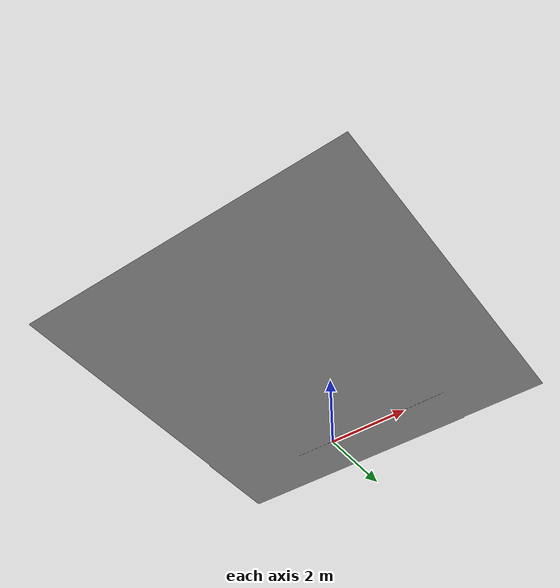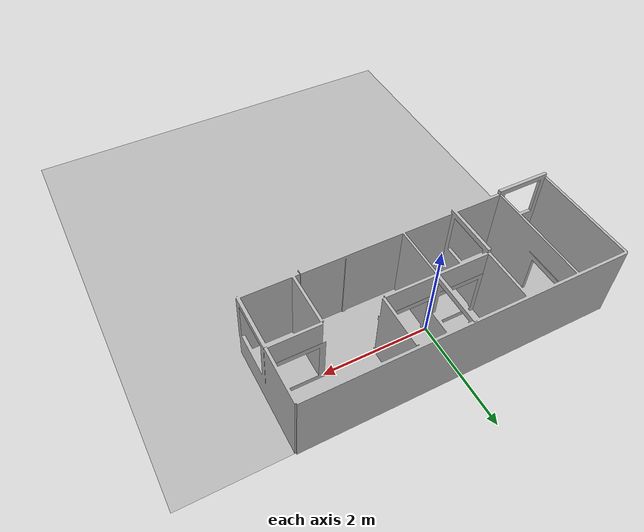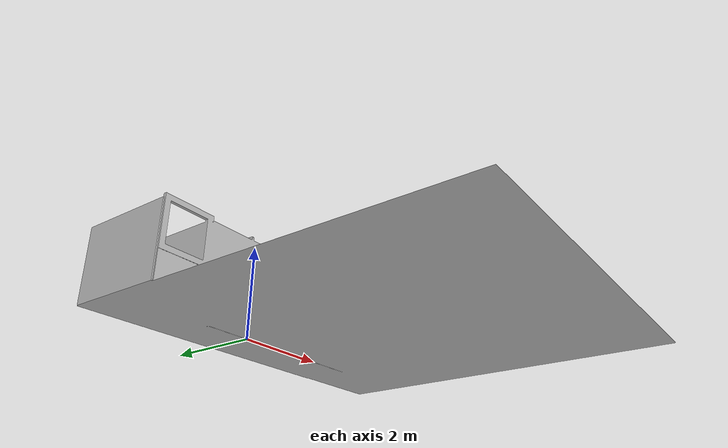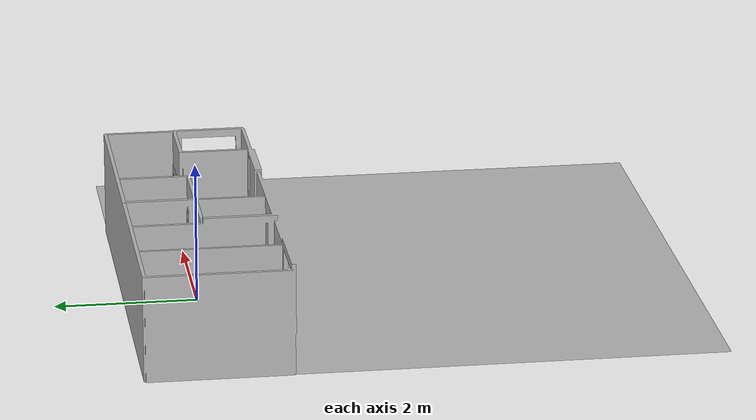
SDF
<?xml version="1.0" ?>
<sdf version="1.9">
  <model name="Robocup4">
    <static>true</static>
    <link name="link">
      <visual name="visual">
        <geometry>
          <mesh>
            <uri>model://Robocup4/meshes/Robocup4.dae</uri>
          </mesh>
        </geometry>
      </visual>
      <collision name="collision">
        <geometry>
          <mesh>
            <uri>model://Robocup4/meshes/Robocup4.dae</uri>
          </mesh>
        </geometry>
      </collision>
    </link>
  </model>
</sdf>
